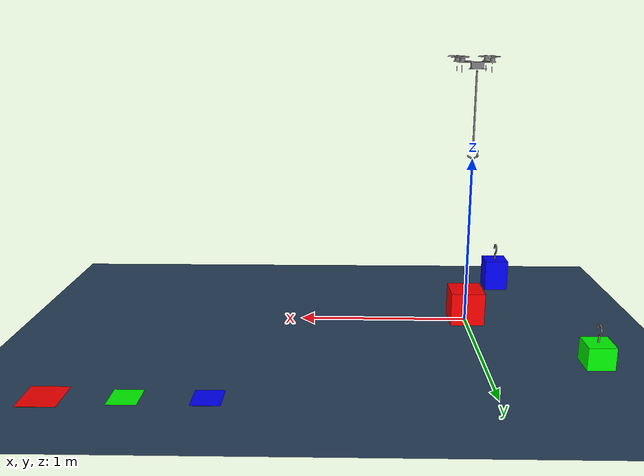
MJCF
<mujoco model="hook_scenario">
  <compiler angle="radian" meshdir=""/>
  <option timestep="0.001"/>
  <visual>
    <quality shadowsize="0"/>
  </visual>

  <asset>
    <mesh file="../assets/quad_model.stl" name="drone" smoothnormal="true" scale=".01 .01 .01"/>
    <texture type="skybox" builtin="gradient" rgb1=".3 .5 .7" rgb2="0 0 0" width="512" height="512"/>
    <texture name="grid" type="2d" builtin="checker" width="512" height="512" rgb1=".1 .2 .3" rgb2=".2 .3 .4"/>
    <material name="grid" texture="grid" texrepeat="1 1" texuniform="true" reflectance=".0"/>
  </asset>

  <worldbody>
    <camera pos="2.867 -5.173 1.776" xyaxes="0.875 0.485 0.000 -0.139 0.252 0.958"/>
    <geom size="50 50 .05" type="plane" material="grid" condim="3"/>
    <light dir=".2 1 -.4" diffuse="1 1 1" specular="0.6 0.9 0.6" pos="-2 -10 6" cutoff="70"/>
    <light dir="-.2 1 -.4" diffuse="1 1 1" specular="0.6 0.9 0.6" pos="2 -10 6" cutoff="70"/>

    <body name="drone" pos="0 0 1.5">
        <inertial pos="0 0 0" diaginertia="1.5e-3 1.45e-3 2.66e-3" mass="0.605"/>
        <joint type="free" name="drone_joint"/>
        <geom name="drone" type="mesh" pos="0 0 0.05" euler="0 0 1.57" mesh="drone"/>
        <site name="drone_cog" pos="0 0 0"/>
        <body name="rod" pos="0 0 0" euler="0 0 0">
            <geom type="cylinder" fromto="0 0 0  0 0 -0.4" size="0.005" mass="0.00"/>
            <site name="rod_end" pos="0 0 -0.4" type="sphere" size="0.002"/>
            <joint axis="0 1 0" pos="0 0 0" damping="0.001" name="hook_joint"/>
            <body name="hook0" pos="0 0 -0.4" euler="0 3.141592 -1.57">
            <geom type="capsule" pos="0 0 0.02" size="0.005 0.02" mass="0.005"/>

            <geom type="capsule" pos="0 0.01299 0.04750" euler="-1.04720 0 0" size="0.005 0.01800" mass="0.0001"/>
            <geom type="capsule" pos="0 0.02598 0.07000" euler="0.00000 0 0" size="0.005 0.01800" mass="0.0001"/>
            <geom type="capsule" pos="0 0.01299 0.09250" euler="1.04720 0 0" size="0.005 0.01800" mass="0.0001"/>
            <geom type="capsule" pos="0 -0.01299 0.09250" euler="2.09440 0 0" size="0.005 0.01800" mass="0.0001"/>

            </body>
    </body>
    </body>

    <body name="load1" pos="0 0 0.1">
        <geom type="box" size=".1 .1 .1" mass="0.15" rgba="1 0 0 1"/>
        <joint type="free"/>
        <body name="hook1" pos="0 0 .1">
            <geom type="capsule" pos="0 0 0.02" size="0.005 0.02" mass="0.0001"/>

            <geom type="capsule" pos="0 0.01173 0.04565" euler="-1.12200 0 0" size="0.005 0.01562" mass="0.0001"/>
            <geom type="capsule" pos="0 0.01061 0.04439" euler="-1.17810 0 0" size="0.005 0.01378" mass="0.0001"/>
            <geom type="capsule" pos="0 0.02561 0.05939" euler="-0.39270 0 0" size="0.005 0.01378" mass="0.0001"/>
            <geom type="capsule" pos="0 0.02561 0.08061" euler="0.39270 0 0" size="0.005 0.01378" mass="0.0001"/>
            <geom type="capsule" pos="0 0.01061 0.09561" euler="1.17810 0 0" size="0.005 0.01378" mass="0.0001"/>
            <geom type="capsule" pos="0 -0.01061 0.09561" euler="1.96350 0 0" size="0.005 0.01378" mass="0.0001"/>
            <geom type="capsule" pos="0 -0.02561 0.08061" euler="2.74889 0 0" size="0.005 0.01378" mass="0.0001"/>

        </body>
    </body>

      <body name="load2" pos="-0.6 0.6 0.05">
        <geom type="box" size=".075 .075 .075" mass="0.05" rgba="0 1 0 1"/>
        <joint type="free"/>
        <body name="hook2" pos="0 0 .075">
            <geom type="capsule" pos="0 0 0.02" size="0.005 0.02" mass="0.0001"/>

            <geom type="capsule" pos="0 0.01173 0.04565" euler="-1.12200 0 0" size="0.005 0.01562" mass="0.0001"/>
            <geom type="capsule" pos="0 0.01061 0.04439" euler="-1.17810 0 0" size="0.005 0.01378" mass="0.0001"/>
            <geom type="capsule" pos="0 0.02561 0.05939" euler="-0.39270 0 0" size="0.005 0.01378" mass="0.0001"/>
            <geom type="capsule" pos="0 0.02561 0.08061" euler="0.39270 0 0" size="0.005 0.01378" mass="0.0001"/>
            <geom type="capsule" pos="0 0.01061 0.09561" euler="1.17810 0 0" size="0.005 0.01378" mass="0.0001"/>
            <geom type="capsule" pos="0 -0.01061 0.09561" euler="1.96350 0 0" size="0.005 0.01378" mass="0.0001"/>
            <geom type="capsule" pos="0 -0.02561 0.08061" euler="2.74889 0 0" size="0.005 0.01378" mass="0.0001"/>

        </body>
    </body>

      <body name="load3" pos="-0.3 -0.6 0.1">
        <geom type="box" size=".075 .075 .1" mass="0.1" rgba="0 0 1 1"/>
        <joint type="free"/>
        <body name="hook3" pos="0 0 .1">
            <geom type="capsule" pos="0 0 0.02" size="0.005 0.02" mass="0.0001"/>

            <geom type="capsule" pos="0 0.01173 0.04565" euler="-1.12200 0 0" size="0.005 0.01562" mass="0.0001"/>
            <geom type="capsule" pos="0 0.01061 0.04439" euler="-1.17810 0 0" size="0.005 0.01378" mass="0.0001"/>
            <geom type="capsule" pos="0 0.02561 0.05939" euler="-0.39270 0 0" size="0.005 0.01378" mass="0.0001"/>
            <geom type="capsule" pos="0 0.02561 0.08061" euler="0.39270 0 0" size="0.005 0.01378" mass="0.0001"/>
            <geom type="capsule" pos="0 0.01061 0.09561" euler="1.17810 0 0" size="0.005 0.01378" mass="0.0001"/>
            <geom type="capsule" pos="0 -0.01061 0.09561" euler="1.96350 0 0" size="0.005 0.01378" mass="0.0001"/>
            <geom type="capsule" pos="0 -0.02561 0.08061" euler="2.74889 0 0" size="0.005 0.01378" mass="0.0001"/>

        </body>
    </body>

      <body name="load_target1" pos="2.2 1 0.0005">
              <geom type="box" size=".1 .1 .0005" rgba="1 0 0 1"/>
      </body>
            <body name="load_target2" pos="1.8 1 0.0005">
              <geom type="box" size=".075 .075 .0005" rgba="0 1 0 1"/>
      </body>
            <body name="load_target3" pos="1.4 1 0.0005">
              <geom type="box" size=".075 .075 .0005" rgba="0 0 1 1"/>
      </body>

  </worldbody>

  <actuator>
      <general site="drone_cog" gear=" 0 0 1 0 0 0" ctrllimited="true" ctrlrange="0 20"/>
      <general site="drone_cog" gear=" 0 0 0 1 0 0" ctrllimited="true" ctrlrange="-0.06 0.06"/>
      <general site="drone_cog" gear=" 0 0 0 0 1 0" ctrllimited="true" ctrlrange="-0.06 0.06"/>
      <general site="drone_cog" gear=" 0 0 0 0 0 1" ctrllimited="true" ctrlrange="-0.06 0.06"/>
  </actuator>
  <sensor>
      <gyro name="drone" site="drone_cog"/>
  </sensor>
</mujoco>
